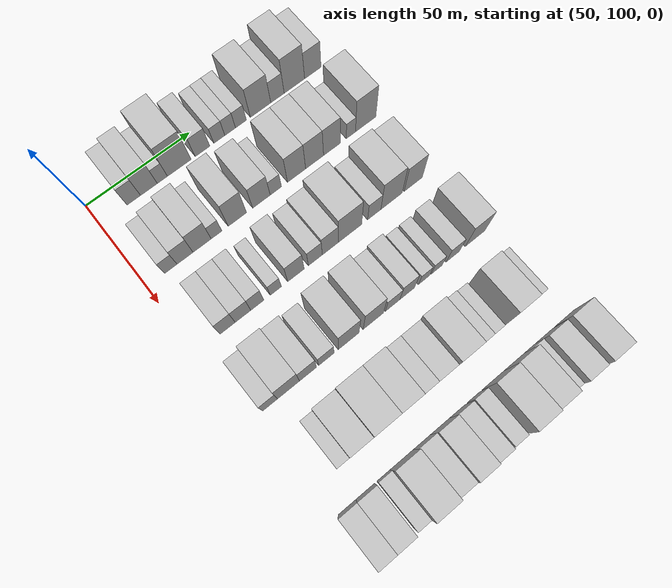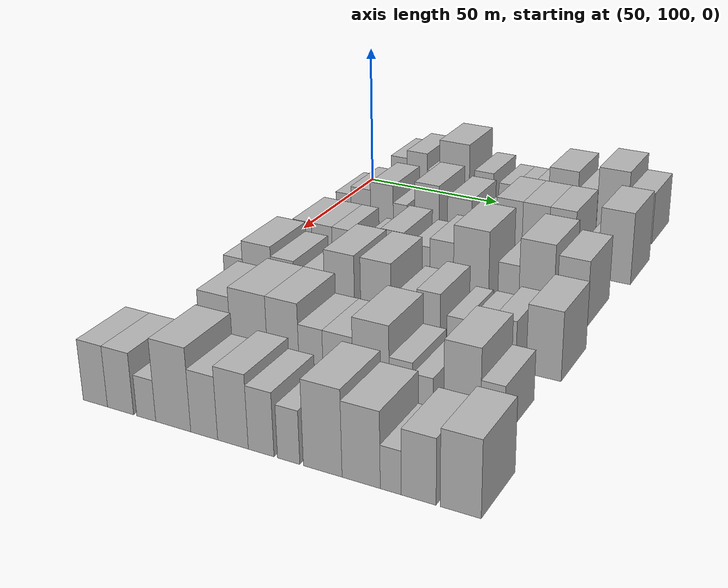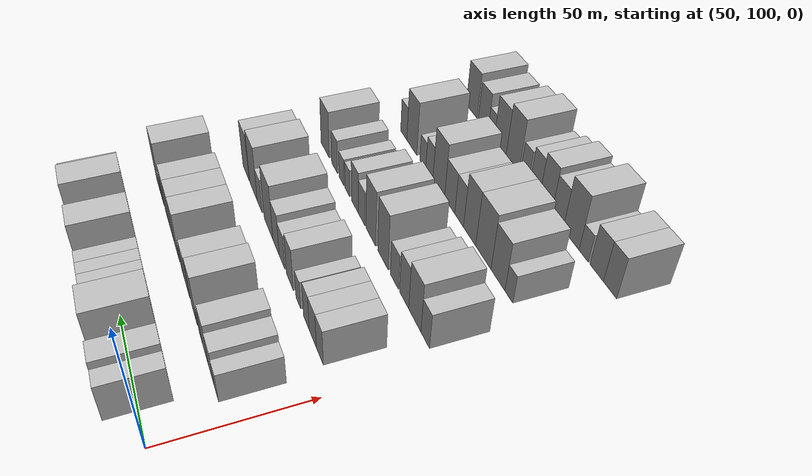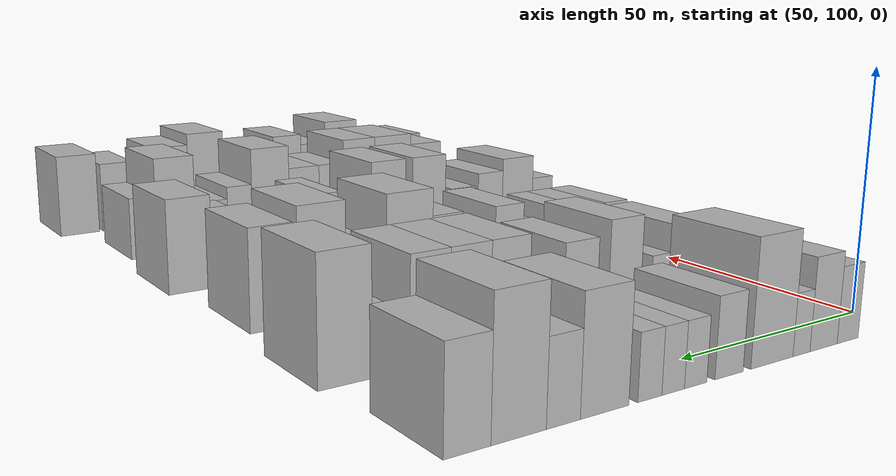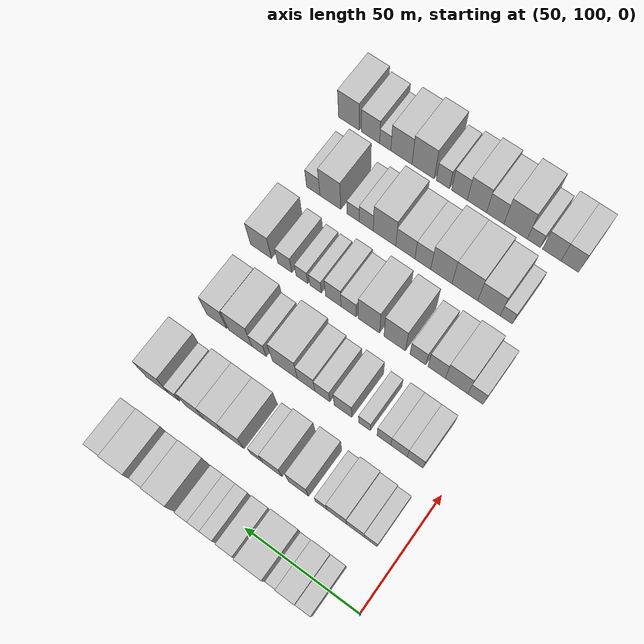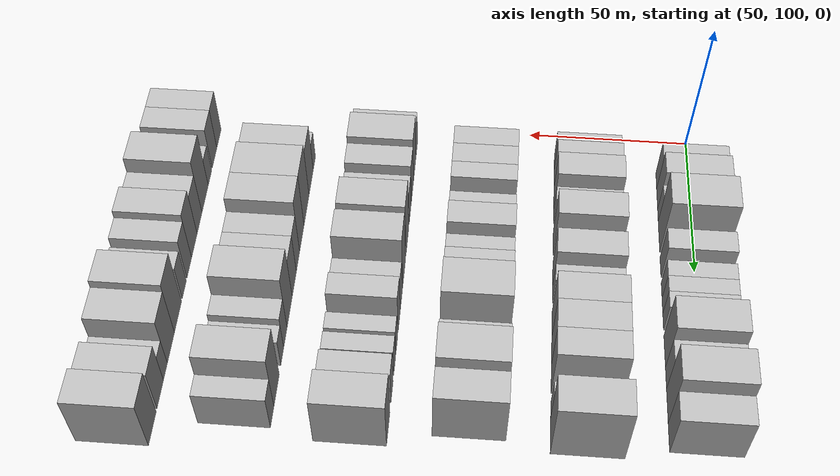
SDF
<sdf version="1.6">
 <world name="default">
  <model name="building_73">
   <static>1</static>
   <pose>50.0000 116.0705 0 0.000000 0.000000 0.000000</pose>
   <link name="link">
    <pose>0 0 7.50 0 0 0</pose>
    <collision name="collision"><geometry><box><size>20.0000 6.3748 15.0000</size></box></geometry></collision>
    <visual name="visual">
     <cast_shadows>0</cast_shadows>
     <geometry><box><size>20.0000 6.3748 15.0000</size></box></geometry>
     <material>
      <script>
       <uri>model://HANNAS_wall/materials/scripts</uri>
       <uri>model://HANNAS_wall/materials/textures</uri>
       <name>vrc/HANNAS_wall</name>
      </script>
     </material>
    </visual>
   </link>
  </model>
  <model name="building_74">
   <static>1</static>
   <pose>50.0000 123.2562 0 0.000000 0.000000 0.000000</pose>
   <link name="link">
    <pose>0 0 9.00 0 0 0</pose>
    <collision name="collision"><geometry><box><size>20.0000 7.9965 18.0000</size></box></geometry></collision>
    <visual name="visual">
     <cast_shadows>0</cast_shadows>
     <geometry><box><size>20.0000 7.9965 18.0000</size></box></geometry>
     <material>
      <script>
       <uri>model://HANNAS_wall/materials/scripts</uri>
       <uri>model://HANNAS_wall/materials/textures</uri>
       <name>vrc/HANNAS_wall</name>
      </script>
     </material>
    </visual>
   </link>
  </model>
  <model name="building_75">
   <static>1</static>
   <pose>50.0000 129.6763 0 0.000000 0.000000 0.000000</pose>
   <link name="link">
    <pose>0 0 6.00 0 0 0</pose>
    <collision name="collision"><geometry><box><size>20.0000 4.8437 12.0000</size></box></geometry></collision>
    <visual name="visual">
     <cast_shadows>0</cast_shadows>
     <geometry><box><size>20.0000 4.8437 12.0000</size></box></geometry>
     <material>
      <script>
       <uri>model://HANNAS_wall/materials/scripts</uri>
       <uri>model://HANNAS_wall/materials/textures</uri>
       <name>vrc/HANNAS_wall</name>
      </script>
     </material>
    </visual>
   </link>
  </model>
  <model name="building_76">
   <static>1</static>
   <pose>50.0000 137.8313 0 0.000000 0.000000 0.000000</pose>
   <link name="link">
    <pose>0 0 12.00 0 0 0</pose>
    <collision name="collision"><geometry><box><size>20.0000 11.4663 24.0000</size></box></geometry></collision>
    <visual name="visual">
     <cast_shadows>0</cast_shadows>
     <geometry><box><size>20.0000 11.4663 24.0000</size></box></geometry>
     <material>
      <script>
       <uri>model://HANNAS_wall/materials/scripts</uri>
       <uri>model://HANNAS_wall/materials/textures</uri>
       <name>vrc/HANNAS_wall</name>
      </script>
     </material>
    </visual>
   </link>
  </model>
  <model name="building_77">
   <static>1</static>
   <pose>50.0000 149.1708 0 0.000000 0.000000 0.000000</pose>
   <link name="link">
    <pose>0 0 7.50 0 0 0</pose>
    <collision name="collision"><geometry><box><size>20.0000 7.2126 15.0000</size></box></geometry></collision>
    <visual name="visual">
     <cast_shadows>0</cast_shadows>
     <geometry><box><size>20.0000 7.2126 15.0000</size></box></geometry>
     <material>
      <script>
       <uri>model://HANNAS_wall/materials/scripts</uri>
       <uri>model://HANNAS_wall/materials/textures</uri>
       <name>vrc/HANNAS_wall</name>
      </script>
     </material>
    </visual>
   </link>
  </model>
  <model name="building_78">
   <static>1</static>
   <pose>50.0000 157.5082 0 0.000000 0.000000 0.000000</pose>
   <link name="link">
    <pose>0 0 6.00 0 0 0</pose>
    <collision name="collision"><geometry><box><size>20.0000 5.4622 12.0000</size></box></geometry></collision>
    <visual name="visual">
     <cast_shadows>0</cast_shadows>
     <geometry><box><size>20.0000 5.4622 12.0000</size></box></geometry>
     <material>
      <script>
       <uri>model://HANNAS_wall/materials/scripts</uri>
       <uri>model://HANNAS_wall/materials/textures</uri>
       <name>vrc/HANNAS_wall</name>
      </script>
     </material>
    </visual>
   </link>
  </model>
  <model name="building_79">
   <static>1</static>
   <pose>50.0000 162.9114 0 0.000000 0.000000 0.000000</pose>
   <link name="link">
    <pose>0 0 6.00 0 0 0</pose>
    <collision name="collision"><geometry><box><size>20.0000 5.3441 12.0000</size></box></geometry></collision>
    <visual name="visual">
     <cast_shadows>0</cast_shadows>
     <geometry><box><size>20.0000 5.3441 12.0000</size></box></geometry>
     <material>
      <script>
       <uri>model://HANNAS_wall/materials/scripts</uri>
       <uri>model://HANNAS_wall/materials/textures</uri>
       <name>vrc/HANNAS_wall</name>
      </script>
     </material>
    </visual>
   </link>
  </model>
  <model name="building_80">
   <static>1</static>
   <pose>50.0000 168.3394 0 0.000000 0.000000 0.000000</pose>
   <link name="link">
    <pose>0 0 6.00 0 0 0</pose>
    <collision name="collision"><geometry><box><size>20.0000 5.5121 12.0000</size></box></geometry></collision>
    <visual name="visual">
     <cast_shadows>0</cast_shadows>
     <geometry><box><size>20.0000 5.5121 12.0000</size></box></geometry>
     <material>
      <script>
       <uri>model://HANNAS_wall/materials/scripts</uri>
       <uri>model://HANNAS_wall/materials/textures</uri>
       <name>vrc/HANNAS_wall</name>
      </script>
     </material>
    </visual>
   </link>
  </model>
  <model name="building_81">
   <static>1</static>
   <pose>50.0000 178.3132 0 0.000000 0.000000 0.000000</pose>
   <link name="link">
    <pose>0 0 10.50 0 0 0</pose>
    <collision name="collision"><geometry><box><size>20.0000 10.4354 21.0000</size></box></geometry></collision>
    <visual name="visual">
     <cast_shadows>0</cast_shadows>
     <geometry><box><size>20.0000 10.4354 21.0000</size></box></geometry>
     <material>
      <script>
       <uri>model://HANNAS_wall/materials/scripts</uri>
       <uri>model://HANNAS_wall/materials/textures</uri>
       <name>vrc/HANNAS_wall</name>
      </script>
     </material>
    </visual>
   </link>
  </model>
  <model name="building_82">
   <static>1</static>
   <pose>50.0000 186.9970 0 0.000000 0.000000 0.000000</pose>
   <link name="link">
    <pose>0 0 7.50 0 0 0</pose>
    <collision name="collision"><geometry><box><size>20.0000 6.9324 15.0000</size></box></geometry></collision>
    <visual name="visual">
     <cast_shadows>0</cast_shadows>
     <geometry><box><size>20.0000 6.9324 15.0000</size></box></geometry>
     <material>
      <script>
       <uri>model://HANNAS_wall/materials/scripts</uri>
       <uri>model://HANNAS_wall/materials/textures</uri>
       <name>vrc/HANNAS_wall</name>
      </script>
     </material>
    </visual>
   </link>
  </model>
  <model name="building_83">
   <static>1</static>
   <pose>50.0000 195.8103 0 0.000000 0.000000 0.000000</pose>
   <link name="link">
    <pose>0 0 12.00 0 0 0</pose>
    <collision name="collision"><geometry><box><size>20.0000 10.6941 24.0000</size></box></geometry></collision>
    <visual name="visual">
     <cast_shadows>0</cast_shadows>
     <geometry><box><size>20.0000 10.6941 24.0000</size></box></geometry>
     <material>
      <script>
       <uri>model://HANNAS_wall/materials/scripts</uri>
       <uri>model://HANNAS_wall/materials/textures</uri>
       <name>vrc/HANNAS_wall</name>
      </script>
     </material>
    </visual>
   </link>
  </model>
  <model name="building_84">
   <static>1</static>
   <pose>50.0000 205.4900 0 0.000000 0.000000 0.000000</pose>
   <link name="link">
    <pose>0 0 9.00 0 0 0</pose>
    <collision name="collision"><geometry><box><size>20.0000 8.6653 18.0000</size></box></geometry></collision>
    <visual name="visual">
     <cast_shadows>0</cast_shadows>
     <geometry><box><size>20.0000 8.6653 18.0000</size></box></geometry>
     <material>
      <script>
       <uri>model://HANNAS_wall/materials/scripts</uri>
       <uri>model://HANNAS_wall/materials/textures</uri>
       <name>vrc/HANNAS_wall</name>
      </script>
     </material>
    </visual>
   </link>
  </model>
  <model name="building_189">
   <static>1</static>
   <pose>82.0000 111.1858 0 0.000000 0.000000 0.000000</pose>
   <link name="link">
    <pose>0 0 6.00 0 0 0</pose>
    <collision name="collision"><geometry><box><size>20.0000 5.7949 12.0000</size></box></geometry></collision>
    <visual name="visual">
     <cast_shadows>0</cast_shadows>
     <geometry><box><size>20.0000 5.7949 12.0000</size></box></geometry>
     <material>
      <script>
       <uri>model://HANNAS_wall/materials/scripts</uri>
       <uri>model://HANNAS_wall/materials/textures</uri>
       <name>vrc/HANNAS_wall</name>
      </script>
     </material>
    </visual>
   </link>
  </model>
  <model name="building_190">
   <static>1</static>
   <pose>82.0000 117.8266 0 0.000000 0.000000 0.000000</pose>
   <link name="link">
    <pose>0 0 7.50 0 0 0</pose>
    <collision name="collision"><geometry><box><size>20.0000 7.4867 15.0000</size></box></geometry></collision>
    <visual name="visual">
     <cast_shadows>0</cast_shadows>
     <geometry><box><size>20.0000 7.4867 15.0000</size></box></geometry>
     <material>
      <script>
       <uri>model://HANNAS_wall/materials/scripts</uri>
       <uri>model://HANNAS_wall/materials/textures</uri>
       <name>vrc/HANNAS_wall</name>
      </script>
     </material>
    </visual>
   </link>
  </model>
  <model name="building_191">
   <static>1</static>
   <pose>82.0000 125.8570 0 0.000000 0.000000 0.000000</pose>
   <link name="link">
    <pose>0 0 9.00 0 0 0</pose>
    <collision name="collision"><geometry><box><size>20.0000 8.5742 18.0000</size></box></geometry></collision>
    <visual name="visual">
     <cast_shadows>0</cast_shadows>
     <geometry><box><size>20.0000 8.5742 18.0000</size></box></geometry>
     <material>
      <script>
       <uri>model://HANNAS_wall/materials/scripts</uri>
       <uri>model://HANNAS_wall/materials/textures</uri>
       <name>vrc/HANNAS_wall</name>
      </script>
     </material>
    </visual>
   </link>
  </model>
  <model name="building_192">
   <static>1</static>
   <pose>82.0000 132.6845 0 0.000000 0.000000 0.000000</pose>
   <link name="link">
    <pose>0 0 6.00 0 0 0</pose>
    <collision name="collision"><geometry><box><size>20.0000 5.0806 12.0000</size></box></geometry></collision>
    <visual name="visual">
     <cast_shadows>0</cast_shadows>
     <geometry><box><size>20.0000 5.0806 12.0000</size></box></geometry>
     <material>
      <script>
       <uri>model://HANNAS_wall/materials/scripts</uri>
       <uri>model://HANNAS_wall/materials/textures</uri>
       <name>vrc/HANNAS_wall</name>
      </script>
     </material>
    </visual>
   </link>
  </model>
  <model name="building_193">
   <static>1</static>
   <pose>82.0000 142.6565 0 0.000000 0.000000 0.000000</pose>
   <link name="link">
    <pose>0 0 10.50 0 0 0</pose>
    <collision name="collision"><geometry><box><size>20.0000 8.8636 21.0000</size></box></geometry></collision>
    <visual name="visual">
     <cast_shadows>0</cast_shadows>
     <geometry><box><size>20.0000 8.8636 21.0000</size></box></geometry>
     <material>
      <script>
       <uri>model://HANNAS_wall/materials/scripts</uri>
       <uri>model://HANNAS_wall/materials/textures</uri>
       <name>vrc/HANNAS_wall</name>
      </script>
     </material>
    </visual>
   </link>
  </model>
  <model name="building_194">
   <static>1</static>
   <pose>82.0000 154.3852 0 0.000000 0.000000 0.000000</pose>
   <link name="link">
    <pose>0 0 9.00 0 0 0</pose>
    <collision name="collision"><geometry><box><size>20.0000 8.5938 18.0000</size></box></geometry></collision>
    <visual name="visual">
     <cast_shadows>0</cast_shadows>
     <geometry><box><size>20.0000 8.5938 18.0000</size></box></geometry>
     <material>
      <script>
       <uri>model://HANNAS_wall/materials/scripts</uri>
       <uri>model://HANNAS_wall/materials/textures</uri>
       <name>vrc/HANNAS_wall</name>
      </script>
     </material>
    </visual>
   </link>
  </model>
  <model name="building_195">
   <static>1</static>
   <pose>82.0000 161.4763 0 0.000000 0.000000 0.000000</pose>
   <link name="link">
    <pose>0 0 6.00 0 0 0</pose>
    <collision name="collision"><geometry><box><size>20.0000 5.5882 12.0000</size></box></geometry></collision>
    <visual name="visual">
     <cast_shadows>0</cast_shadows>
     <geometry><box><size>20.0000 5.5882 12.0000</size></box></geometry>
     <material>
      <script>
       <uri>model://HANNAS_wall/materials/scripts</uri>
       <uri>model://HANNAS_wall/materials/textures</uri>
       <name>vrc/HANNAS_wall</name>
      </script>
     </material>
    </visual>
   </link>
  </model>
  <model name="building_196">
   <static>1</static>
   <pose>82.0000 171.8208 0 0.000000 0.000000 0.000000</pose>
   <link name="link">
    <pose>0 0 10.50 0 0 0</pose>
    <collision name="collision"><geometry><box><size>20.0000 9.1008 21.0000</size></box></geometry></collision>
    <visual name="visual">
     <cast_shadows>0</cast_shadows>
     <geometry><box><size>20.0000 9.1008 21.0000</size></box></geometry>
     <material>
      <script>
       <uri>model://HANNAS_wall/materials/scripts</uri>
       <uri>model://HANNAS_wall/materials/textures</uri>
       <name>vrc/HANNAS_wall</name>
      </script>
     </material>
    </visual>
   </link>
  </model>
  <model name="building_197">
   <static>1</static>
   <pose>82.0000 180.9183 0 0.000000 0.000000 0.000000</pose>
   <link name="link">
    <pose>0 0 10.50 0 0 0</pose>
    <collision name="collision"><geometry><box><size>20.0000 9.0941 21.0000</size></box></geometry></collision>
    <visual name="visual">
     <cast_shadows>0</cast_shadows>
     <geometry><box><size>20.0000 9.0941 21.0000</size></box></geometry>
     <material>
      <script>
       <uri>model://HANNAS_wall/materials/scripts</uri>
       <uri>model://HANNAS_wall/materials/textures</uri>
       <name>vrc/HANNAS_wall</name>
      </script>
     </material>
    </visual>
   </link>
  </model>
  <model name="building_198">
   <static>1</static>
   <pose>82.0000 189.8263 0 0.000000 0.000000 0.000000</pose>
   <link name="link">
    <pose>0 0 10.50 0 0 0</pose>
    <collision name="collision"><geometry><box><size>20.0000 8.7218 21.0000</size></box></geometry></collision>
    <visual name="visual">
     <cast_shadows>0</cast_shadows>
     <geometry><box><size>20.0000 8.7218 21.0000</size></box></geometry>
     <material>
      <script>
       <uri>model://HANNAS_wall/materials/scripts</uri>
       <uri>model://HANNAS_wall/materials/textures</uri>
       <name>vrc/HANNAS_wall</name>
      </script>
     </material>
    </visual>
   </link>
  </model>
  <model name="building_199">
   <static>1</static>
   <pose>82.0000 199.5909 0 0.000000 0.000000 0.000000</pose>
   <link name="link">
    <pose>0 0 6.00 0 0 0</pose>
    <collision name="collision"><geometry><box><size>20.0000 4.8074 12.0000</size></box></geometry></collision>
    <visual name="visual">
     <cast_shadows>0</cast_shadows>
     <geometry><box><size>20.0000 4.8074 12.0000</size></box></geometry>
     <material>
      <script>
       <uri>model://HANNAS_wall/materials/scripts</uri>
       <uri>model://HANNAS_wall/materials/textures</uri>
       <name>vrc/HANNAS_wall</name>
      </script>
     </material>
    </visual>
   </link>
  </model>
  <model name="building_200">
   <static>1</static>
   <pose>82.0000 207.3265 0 0.000000 0.000000 0.000000</pose>
   <link name="link">
    <pose>0 0 12.00 0 0 0</pose>
    <collision name="collision"><geometry><box><size>20.0000 10.6637 24.0000</size></box></geometry></collision>
    <visual name="visual">
     <cast_shadows>0</cast_shadows>
     <geometry><box><size>20.0000 10.6637 24.0000</size></box></geometry>
     <material>
      <script>
       <uri>model://HANNAS_wall/materials/scripts</uri>
       <uri>model://HANNAS_wall/materials/textures</uri>
       <name>vrc/HANNAS_wall</name>
      </script>
     </material>
    </visual>
   </link>
  </model>
  <model name="building_306">
   <static>1</static>
   <pose>114.0000 114.3376 0 0.000000 0.000000 0.000000</pose>
   <link name="link">
    <pose>0 0 7.50 0 0 0</pose>
    <collision name="collision"><geometry><box><size>20.0000 6.9234 15.0000</size></box></geometry></collision>
    <visual name="visual">
     <cast_shadows>0</cast_shadows>
     <geometry><box><size>20.0000 6.9234 15.0000</size></box></geometry>
     <material>
      <script>
       <uri>model://HANNAS_wall/materials/scripts</uri>
       <uri>model://HANNAS_wall/materials/textures</uri>
       <name>vrc/HANNAS_wall</name>
      </script>
     </material>
    </visual>
   </link>
  </model>
  <model name="building_307">
   <static>1</static>
   <pose>114.0000 121.4168 0 0.000000 0.000000 0.000000</pose>
   <link name="link">
    <pose>0 0 7.50 0 0 0</pose>
    <collision name="collision"><geometry><box><size>20.0000 7.2350 15.0000</size></box></geometry></collision>
    <visual name="visual">
     <cast_shadows>0</cast_shadows>
     <geometry><box><size>20.0000 7.2350 15.0000</size></box></geometry>
     <material>
      <script>
       <uri>model://HANNAS_wall/materials/scripts</uri>
       <uri>model://HANNAS_wall/materials/textures</uri>
       <name>vrc/HANNAS_wall</name>
      </script>
     </material>
    </visual>
   </link>
  </model>
  <model name="building_308">
   <static>1</static>
   <pose>114.0000 128.0933 0 0.000000 0.000000 0.000000</pose>
   <link name="link">
    <pose>0 0 7.50 0 0 0</pose>
    <collision name="collision"><geometry><box><size>20.0000 6.1179 15.0000</size></box></geometry></collision>
    <visual name="visual">
     <cast_shadows>0</cast_shadows>
     <geometry><box><size>20.0000 6.1179 15.0000</size></box></geometry>
     <material>
      <script>
       <uri>model://HANNAS_wall/materials/scripts</uri>
       <uri>model://HANNAS_wall/materials/textures</uri>
       <name>vrc/HANNAS_wall</name>
      </script>
     </material>
    </visual>
   </link>
  </model>
  <model name="building_309">
   <static>1</static>
   <pose>114.0000 136.7997 0 0.000000 0.000000 0.000000</pose>
   <link name="link">
    <pose>0 0 6.00 0 0 0</pose>
    <collision name="collision"><geometry><box><size>20.0000 5.2948 12.0000</size></box></geometry></collision>
    <visual name="visual">
     <cast_shadows>0</cast_shadows>
     <geometry><box><size>20.0000 5.2948 12.0000</size></box></geometry>
     <material>
      <script>
       <uri>model://HANNAS_wall/materials/scripts</uri>
       <uri>model://HANNAS_wall/materials/textures</uri>
       <name>vrc/HANNAS_wall</name>
      </script>
     </material>
    </visual>
   </link>
  </model>
  <model name="building_310">
   <static>1</static>
   <pose>114.0000 146.4066 0 0.000000 0.000000 0.000000</pose>
   <link name="link">
    <pose>0 0 9.00 0 0 0</pose>
    <collision name="collision"><geometry><box><size>20.0000 7.9189 18.0000</size></box></geometry></collision>
    <visual name="visual">
     <cast_shadows>0</cast_shadows>
     <geometry><box><size>20.0000 7.9189 18.0000</size></box></geometry>
     <material>
      <script>
       <uri>model://HANNAS_wall/materials/scripts</uri>
       <uri>model://HANNAS_wall/materials/textures</uri>
       <name>vrc/HANNAS_wall</name>
      </script>
     </material>
    </visual>
   </link>
  </model>
  <model name="building_311">
   <static>1</static>
   <pose>114.0000 155.7521 0 0.000000 0.000000 0.000000</pose>
   <link name="link">
    <pose>0 0 7.50 0 0 0</pose>
    <collision name="collision"><geometry><box><size>20.0000 6.7722 15.0000</size></box></geometry></collision>
    <visual name="visual">
     <cast_shadows>0</cast_shadows>
     <geometry><box><size>20.0000 6.7722 15.0000</size></box></geometry>
     <material>
      <script>
       <uri>model://HANNAS_wall/materials/scripts</uri>
       <uri>model://HANNAS_wall/materials/textures</uri>
       <name>vrc/HANNAS_wall</name>
      </script>
     </material>
    </visual>
   </link>
  </model>
  <model name="building_312">
   <static>1</static>
   <pose>114.0000 163.0982 0 0.000000 0.000000 0.000000</pose>
   <link name="link">
    <pose>0 0 9.00 0 0 0</pose>
    <collision name="collision"><geometry><box><size>20.0000 7.9199 18.0000</size></box></geometry></collision>
    <visual name="visual">
     <cast_shadows>0</cast_shadows>
     <geometry><box><size>20.0000 7.9199 18.0000</size></box></geometry>
     <material>
      <script>
       <uri>model://HANNAS_wall/materials/scripts</uri>
       <uri>model://HANNAS_wall/materials/textures</uri>
       <name>vrc/HANNAS_wall</name>
      </script>
     </material>
    </visual>
   </link>
  </model>
  <model name="building_313">
   <static>1</static>
   <pose>114.0000 172.8481 0 0.000000 0.000000 0.000000</pose>
   <link name="link">
    <pose>0 0 12.00 0 0 0</pose>
    <collision name="collision"><geometry><box><size>20.0000 11.5801 24.0000</size></box></geometry></collision>
    <visual name="visual">
     <cast_shadows>0</cast_shadows>
     <geometry><box><size>20.0000 11.5801 24.0000</size></box></geometry>
     <material>
      <script>
       <uri>model://HANNAS_wall/materials/scripts</uri>
       <uri>model://HANNAS_wall/materials/textures</uri>
       <name>vrc/HANNAS_wall</name>
      </script>
     </material>
    </visual>
   </link>
  </model>
  <model name="building_314">
   <static>1</static>
   <pose>114.0000 184.9871 0 0.000000 0.000000 0.000000</pose>
   <link name="link">
    <pose>0 0 7.50 0 0 0</pose>
    <collision name="collision"><geometry><box><size>20.0000 6.6978 15.0000</size></box></geometry></collision>
    <visual name="visual">
     <cast_shadows>0</cast_shadows>
     <geometry><box><size>20.0000 6.6978 15.0000</size></box></geometry>
     <material>
      <script>
       <uri>model://HANNAS_wall/materials/scripts</uri>
       <uri>model://HANNAS_wall/materials/textures</uri>
       <name>vrc/HANNAS_wall</name>
      </script>
     </material>
    </visual>
   </link>
  </model>
  <model name="building_315">
   <static>1</static>
   <pose>114.0000 193.8155 0 0.000000 0.000000 0.000000</pose>
   <link name="link">
    <pose>0 0 12.00 0 0 0</pose>
    <collision name="collision"><geometry><box><size>20.0000 10.9590 24.0000</size></box></geometry></collision>
    <visual name="visual">
     <cast_shadows>0</cast_shadows>
     <geometry><box><size>20.0000 10.9590 24.0000</size></box></geometry>
     <material>
      <script>
       <uri>model://HANNAS_wall/materials/scripts</uri>
       <uri>model://HANNAS_wall/materials/textures</uri>
       <name>vrc/HANNAS_wall</name>
      </script>
     </material>
    </visual>
   </link>
  </model>
  <model name="building_316">
   <static>1</static>
   <pose>114.0000 205.0139 0 0.000000 0.000000 0.000000</pose>
   <link name="link">
    <pose>0 0 10.50 0 0 0</pose>
    <collision name="collision"><geometry><box><size>20.0000 9.4379 21.0000</size></box></geometry></collision>
    <visual name="visual">
     <cast_shadows>0</cast_shadows>
     <geometry><box><size>20.0000 9.4379 21.0000</size></box></geometry>
     <material>
      <script>
       <uri>model://HANNAS_wall/materials/scripts</uri>
       <uri>model://HANNAS_wall/materials/textures</uri>
       <name>vrc/HANNAS_wall</name>
      </script>
     </material>
    </visual>
   </link>
  </model>
  <model name="building_429">
   <static>1</static>
   <pose>146.0000 109.6202 0 0.000000 0.000000 0.000000</pose>
   <link name="link">
    <pose>0 0 7.50 0 0 0</pose>
    <collision name="collision"><geometry><box><size>20.0000 6.7454 15.0000</size></box></geometry></collision>
    <visual name="visual">
     <cast_shadows>0</cast_shadows>
     <geometry><box><size>20.0000 6.7454 15.0000</size></box></geometry>
     <material>
      <script>
       <uri>model://HANNAS_wall/materials/scripts</uri>
       <uri>model://HANNAS_wall/materials/textures</uri>
       <name>vrc/HANNAS_wall</name>
      </script>
     </material>
    </visual>
   </link>
  </model>
  <model name="building_430">
   <static>1</static>
   <pose>146.0000 117.9711 0 0.000000 0.000000 0.000000</pose>
   <link name="link">
    <pose>0 0 10.50 0 0 0</pose>
    <collision name="collision"><geometry><box><size>20.0000 9.9562 21.0000</size></box></geometry></collision>
    <visual name="visual">
     <cast_shadows>0</cast_shadows>
     <geometry><box><size>20.0000 9.9562 21.0000</size></box></geometry>
     <material>
      <script>
       <uri>model://HANNAS_wall/materials/scripts</uri>
       <uri>model://HANNAS_wall/materials/textures</uri>
       <name>vrc/HANNAS_wall</name>
      </script>
     </material>
    </visual>
   </link>
  </model>
  <model name="building_431">
   <static>1</static>
   <pose>146.0000 126.8595 0 0.000000 0.000000 0.000000</pose>
   <link name="link">
    <pose>0 0 9.00 0 0 0</pose>
    <collision name="collision"><geometry><box><size>20.0000 7.8206 18.0000</size></box></geometry></collision>
    <visual name="visual">
     <cast_shadows>0</cast_shadows>
     <geometry><box><size>20.0000 7.8206 18.0000</size></box></geometry>
     <material>
      <script>
       <uri>model://HANNAS_wall/materials/scripts</uri>
       <uri>model://HANNAS_wall/materials/textures</uri>
       <name>vrc/HANNAS_wall</name>
      </script>
     </material>
    </visual>
   </link>
  </model>
  <model name="building_432">
   <static>1</static>
   <pose>146.0000 135.3620 0 0.000000 0.000000 0.000000</pose>
   <link name="link">
    <pose>0 0 7.50 0 0 0</pose>
    <collision name="collision"><geometry><box><size>20.0000 7.1844 15.0000</size></box></geometry></collision>
    <visual name="visual">
     <cast_shadows>0</cast_shadows>
     <geometry><box><size>20.0000 7.1844 15.0000</size></box></geometry>
     <material>
      <script>
       <uri>model://HANNAS_wall/materials/scripts</uri>
       <uri>model://HANNAS_wall/materials/textures</uri>
       <name>vrc/HANNAS_wall</name>
      </script>
     </material>
    </visual>
   </link>
  </model>
  <model name="building_433">
   <static>1</static>
   <pose>146.0000 145.8602 0 0.000000 0.000000 0.000000</pose>
   <link name="link">
    <pose>0 0 12.00 0 0 0</pose>
    <collision name="collision"><geometry><box><size>20.0000 9.8120 24.0000</size></box></geometry></collision>
    <visual name="visual">
     <cast_shadows>0</cast_shadows>
     <geometry><box><size>20.0000 9.8120 24.0000</size></box></geometry>
     <material>
      <script>
       <uri>model://HANNAS_wall/materials/scripts</uri>
       <uri>model://HANNAS_wall/materials/textures</uri>
       <name>vrc/HANNAS_wall</name>
      </script>
     </material>
    </visual>
   </link>
  </model>
  <model name="building_434">
   <static>1</static>
   <pose>146.0000 157.6385 0 0.000000 0.000000 0.000000</pose>
   <link name="link">
    <pose>0 0 12.00 0 0 0</pose>
    <collision name="collision"><geometry><box><size>20.0000 9.7445 24.0000</size></box></geometry></collision>
    <visual name="visual">
     <cast_shadows>0</cast_shadows>
     <geometry><box><size>20.0000 9.7445 24.0000</size></box></geometry>
     <material>
      <script>
       <uri>model://HANNAS_wall/materials/scripts</uri>
       <uri>model://HANNAS_wall/materials/textures</uri>
       <name>vrc/HANNAS_wall</name>
      </script>
     </material>
    </visual>
   </link>
  </model>
  <model name="building_435">
   <static>1</static>
   <pose>146.0000 167.0324 0 0.000000 0.000000 0.000000</pose>
   <link name="link">
    <pose>0 0 7.50 0 0 0</pose>
    <collision name="collision"><geometry><box><size>20.0000 7.0432 15.0000</size></box></geometry></collision>
    <visual name="visual">
     <cast_shadows>0</cast_shadows>
     <geometry><box><size>20.0000 7.0432 15.0000</size></box></geometry>
     <material>
      <script>
       <uri>model://HANNAS_wall/materials/scripts</uri>
       <uri>model://HANNAS_wall/materials/textures</uri>
       <name>vrc/HANNAS_wall</name>
      </script>
     </material>
    </visual>
   </link>
  </model>
  <model name="building_436">
   <static>1</static>
   <pose>146.0000 174.1772 0 0.000000 0.000000 0.000000</pose>
   <link name="link">
    <pose>0 0 9.00 0 0 0</pose>
    <collision name="collision"><geometry><box><size>20.0000 7.2464 18.0000</size></box></geometry></collision>
    <visual name="visual">
     <cast_shadows>0</cast_shadows>
     <geometry><box><size>20.0000 7.2464 18.0000</size></box></geometry>
     <material>
      <script>
       <uri>model://HANNAS_wall/materials/scripts</uri>
       <uri>model://HANNAS_wall/materials/textures</uri>
       <name>vrc/HANNAS_wall</name>
      </script>
     </material>
    </visual>
   </link>
  </model>
  <model name="building_437">
   <static>1</static>
   <pose>146.0000 182.5014 0 0.000000 0.000000 0.000000</pose>
   <link name="link">
    <pose>0 0 6.00 0 0 0</pose>
    <collision name="collision"><geometry><box><size>20.0000 5.4020 12.0000</size></box></geometry></collision>
    <visual name="visual">
     <cast_shadows>0</cast_shadows>
     <geometry><box><size>20.0000 5.4020 12.0000</size></box></geometry>
     <material>
      <script>
       <uri>model://HANNAS_wall/materials/scripts</uri>
       <uri>model://HANNAS_wall/materials/textures</uri>
       <name>vrc/HANNAS_wall</name>
      </script>
     </material>
    </visual>
   </link>
  </model>
  <model name="building_438">
   <static>1</static>
   <pose>146.0000 188.9877 0 0.000000 0.000000 0.000000</pose>
   <link name="link">
    <pose>0 0 6.00 0 0 0</pose>
    <collision name="collision"><geometry><box><size>20.0000 5.5704 12.0000</size></box></geometry></collision>
    <visual name="visual">
     <cast_shadows>0</cast_shadows>
     <geometry><box><size>20.0000 5.5704 12.0000</size></box></geometry>
     <material>
      <script>
       <uri>model://HANNAS_wall/materials/scripts</uri>
       <uri>model://HANNAS_wall/materials/textures</uri>
       <name>vrc/HANNAS_wall</name>
      </script>
     </material>
    </visual>
   </link>
  </model>
  <model name="building_439">
   <static>1</static>
   <pose>146.0000 197.1651 0 0.000000 0.000000 0.000000</pose>
   <link name="link">
    <pose>0 0 7.50 0 0 0</pose>
    <collision name="collision"><geometry><box><size>20.0000 6.7845 15.0000</size></box></geometry></collision>
    <visual name="visual">
     <cast_shadows>0</cast_shadows>
     <geometry><box><size>20.0000 6.7845 15.0000</size></box></geometry>
     <material>
      <script>
       <uri>model://HANNAS_wall/materials/scripts</uri>
       <uri>model://HANNAS_wall/materials/textures</uri>
       <name>vrc/HANNAS_wall</name>
      </script>
     </material>
    </visual>
   </link>
  </model>
  <model name="building_440">
   <static>1</static>
   <pose>146.0000 208.6187 0 0.000000 0.000000 0.000000</pose>
   <link name="link">
    <pose>0 0 10.50 0 0 0</pose>
    <collision name="collision"><geometry><box><size>20.0000 10.1228 21.0000</size></box></geometry></collision>
    <visual name="visual">
     <cast_shadows>0</cast_shadows>
     <geometry><box><size>20.0000 10.1228 21.0000</size></box></geometry>
     <material>
      <script>
       <uri>model://HANNAS_wall/materials/scripts</uri>
       <uri>model://HANNAS_wall/materials/textures</uri>
       <name>vrc/HANNAS_wall</name>
      </script>
     </material>
    </visual>
   </link>
  </model>
  <model name="building_541">
   <static>1</static>
   <pose>178.0000 117.0818 0 0.000000 0.000000 0.000000</pose>
   <link name="link">
    <pose>0 0 6.00 0 0 0</pose>
    <collision name="collision"><geometry><box><size>20.0000 5.5165 12.0000</size></box></geometry></collision>
    <visual name="visual">
     <cast_shadows>0</cast_shadows>
     <geometry><box><size>20.0000 5.5165 12.0000</size></box></geometry>
     <material>
      <script>
       <uri>model://HANNAS_wall/materials/scripts</uri>
       <uri>model://HANNAS_wall/materials/textures</uri>
       <name>vrc/HANNAS_wall</name>
      </script>
     </material>
    </visual>
   </link>
  </model>
  <model name="building_542">
   <static>1</static>
   <pose>178.0000 124.9089 0 0.000000 0.000000 0.000000</pose>
   <link name="link">
    <pose>0 0 10.50 0 0 0</pose>
    <collision name="collision"><geometry><box><size>20.0000 10.1377 21.0000</size></box></geometry></collision>
    <visual name="visual">
     <cast_shadows>0</cast_shadows>
     <geometry><box><size>20.0000 10.1377 21.0000</size></box></geometry>
     <material>
      <script>
       <uri>model://HANNAS_wall/materials/scripts</uri>
       <uri>model://HANNAS_wall/materials/textures</uri>
       <name>vrc/HANNAS_wall</name>
      </script>
     </material>
    </visual>
   </link>
  </model>
  <model name="building_543">
   <static>1</static>
   <pose>178.0000 135.8478 0 0.000000 0.000000 0.000000</pose>
   <link name="link">
    <pose>0 0 12.00 0 0 0</pose>
    <collision name="collision"><geometry><box><size>20.0000 11.7401 24.0000</size></box></geometry></collision>
    <visual name="visual">
     <cast_shadows>0</cast_shadows>
     <geometry><box><size>20.0000 11.7401 24.0000</size></box></geometry>
     <material>
      <script>
       <uri>model://HANNAS_wall/materials/scripts</uri>
       <uri>model://HANNAS_wall/materials/textures</uri>
       <name>vrc/HANNAS_wall</name>
      </script>
     </material>
    </visual>
   </link>
  </model>
  <model name="building_544">
   <static>1</static>
   <pose>178.0000 146.6478 0 0.000000 0.000000 0.000000</pose>
   <link name="link">
    <pose>0 0 12.00 0 0 0</pose>
    <collision name="collision"><geometry><box><size>20.0000 9.8599 24.0000</size></box></geometry></collision>
    <visual name="visual">
     <cast_shadows>0</cast_shadows>
     <geometry><box><size>20.0000 9.8599 24.0000</size></box></geometry>
     <material>
      <script>
       <uri>model://HANNAS_wall/materials/scripts</uri>
       <uri>model://HANNAS_wall/materials/textures</uri>
       <name>vrc/HANNAS_wall</name>
      </script>
     </material>
    </visual>
   </link>
  </model>
  <model name="building_545">
   <static>1</static>
   <pose>178.0000 155.2533 0 0.000000 0.000000 0.000000</pose>
   <link name="link">
    <pose>0 0 9.00 0 0 0</pose>
    <collision name="collision"><geometry><box><size>20.0000 7.3513 18.0000</size></box></geometry></collision>
    <visual name="visual">
     <cast_shadows>0</cast_shadows>
     <geometry><box><size>20.0000 7.3513 18.0000</size></box></geometry>
     <material>
      <script>
       <uri>model://HANNAS_wall/materials/scripts</uri>
       <uri>model://HANNAS_wall/materials/textures</uri>
       <name>vrc/HANNAS_wall</name>
      </script>
     </material>
    </visual>
   </link>
  </model>
  <model name="building_546">
   <static>1</static>
   <pose>178.0000 163.3895 0 0.000000 0.000000 0.000000</pose>
   <link name="link">
    <pose>0 0 9.00 0 0 0</pose>
    <collision name="collision"><geometry><box><size>20.0000 8.9211 18.0000</size></box></geometry></collision>
    <visual name="visual">
     <cast_shadows>0</cast_shadows>
     <geometry><box><size>20.0000 8.9211 18.0000</size></box></geometry>
     <material>
      <script>
       <uri>model://HANNAS_wall/materials/scripts</uri>
       <uri>model://HANNAS_wall/materials/textures</uri>
       <name>vrc/HANNAS_wall</name>
      </script>
     </material>
    </visual>
   </link>
  </model>
  <model name="building_547">
   <static>1</static>
   <pose>178.0000 173.1716 0 0.000000 0.000000 0.000000</pose>
   <link name="link">
    <pose>0 0 12.00 0 0 0</pose>
    <collision name="collision"><geometry><box><size>20.0000 10.6431 24.0000</size></box></geometry></collision>
    <visual name="visual">
     <cast_shadows>0</cast_shadows>
     <geometry><box><size>20.0000 10.6431 24.0000</size></box></geometry>
     <material>
      <script>
       <uri>model://HANNAS_wall/materials/scripts</uri>
       <uri>model://HANNAS_wall/materials/textures</uri>
       <name>vrc/HANNAS_wall</name>
      </script>
     </material>
    </visual>
   </link>
  </model>
  <model name="building_548">
   <static>1</static>
   <pose>178.0000 181.8809 0 0.000000 0.000000 0.000000</pose>
   <link name="link">
    <pose>0 0 7.50 0 0 0</pose>
    <collision name="collision"><geometry><box><size>20.0000 6.7757 15.0000</size></box></geometry></collision>
    <visual name="visual">
     <cast_shadows>0</cast_shadows>
     <geometry><box><size>20.0000 6.7757 15.0000</size></box></geometry>
     <material>
      <script>
       <uri>model://HANNAS_wall/materials/scripts</uri>
       <uri>model://HANNAS_wall/materials/textures</uri>
       <name>vrc/HANNAS_wall</name>
      </script>
     </material>
    </visual>
   </link>
  </model>
  <model name="building_549">
   <static>1</static>
   <pose>178.0000 188.1274 0 0.000000 0.000000 0.000000</pose>
   <link name="link">
    <pose>0 0 6.00 0 0 0</pose>
    <collision name="collision"><geometry><box><size>20.0000 5.7172 12.0000</size></box></geometry></collision>
    <visual name="visual">
     <cast_shadows>0</cast_shadows>
     <geometry><box><size>20.0000 5.7172 12.0000</size></box></geometry>
     <material>
      <script>
       <uri>model://HANNAS_wall/materials/scripts</uri>
       <uri>model://HANNAS_wall/materials/textures</uri>
       <name>vrc/HANNAS_wall</name>
      </script>
     </material>
    </visual>
   </link>
  </model>
  <model name="building_550">
   <static>1</static>
   <pose>178.0000 199.0446 0 0.000000 0.000000 0.000000</pose>
   <link name="link">
    <pose>0 0 12.00 0 0 0</pose>
    <collision name="collision"><geometry><box><size>20.0000 10.1172 24.0000</size></box></geometry></collision>
    <visual name="visual">
     <cast_shadows>0</cast_shadows>
     <geometry><box><size>20.0000 10.1172 24.0000</size></box></geometry>
     <material>
      <script>
       <uri>model://HANNAS_wall/materials/scripts</uri>
       <uri>model://HANNAS_wall/materials/textures</uri>
       <name>vrc/HANNAS_wall</name>
      </script>
     </material>
    </visual>
   </link>
  </model>
  <model name="building_551">
   <static>1</static>
   <pose>178.0000 207.3615 0 0.000000 0.000000 0.000000</pose>
   <link name="link">
    <pose>0 0 7.50 0 0 0</pose>
    <collision name="collision"><geometry><box><size>20.0000 6.5167 15.0000</size></box></geometry></collision>
    <visual name="visual">
     <cast_shadows>0</cast_shadows>
     <geometry><box><size>20.0000 6.5167 15.0000</size></box></geometry>
     <material>
      <script>
       <uri>model://HANNAS_wall/materials/scripts</uri>
       <uri>model://HANNAS_wall/materials/textures</uri>
       <name>vrc/HANNAS_wall</name>
      </script>
     </material>
    </visual>
   </link>
  </model>
  <model name="building_662">
   <static>1</static>
   <pose>210.0000 109.0299 0 0.000000 0.000000 0.000000</pose>
   <link name="link">
    <pose>0 0 9.00 0 0 0</pose>
    <collision name="collision"><geometry><box><size>20.0000 7.9142 18.0000</size></box></geometry></collision>
    <visual name="visual">
     <cast_shadows>0</cast_shadows>
     <geometry><box><size>20.0000 7.9142 18.0000</size></box></geometry>
     <material>
      <script>
       <uri>model://HANNAS_wall/materials/scripts</uri>
       <uri>model://HANNAS_wall/materials/textures</uri>
       <name>vrc/HANNAS_wall</name>
      </script>
     </material>
    </visual>
   </link>
  </model>
  <model name="building_663">
   <static>1</static>
   <pose>210.0000 117.1747 0 0.000000 0.000000 0.000000</pose>
   <link name="link">
    <pose>0 0 9.00 0 0 0</pose>
    <collision name="collision"><geometry><box><size>20.0000 8.3754 18.0000</size></box></geometry></collision>
    <visual name="visual">
     <cast_shadows>0</cast_shadows>
     <geometry><box><size>20.0000 8.3754 18.0000</size></box></geometry>
     <material>
      <script>
       <uri>model://HANNAS_wall/materials/scripts</uri>
       <uri>model://HANNAS_wall/materials/textures</uri>
       <name>vrc/HANNAS_wall</name>
      </script>
     </material>
    </visual>
   </link>
  </model>
  <model name="building_664">
   <static>1</static>
   <pose>210.0000 125.3513 0 0.000000 0.000000 0.000000</pose>
   <link name="link">
    <pose>0 0 6.00 0 0 0</pose>
    <collision name="collision"><geometry><box><size>20.0000 5.9779 12.0000</size></box></geometry></collision>
    <visual name="visual">
     <cast_shadows>0</cast_shadows>
     <geometry><box><size>20.0000 5.9779 12.0000</size></box></geometry>
     <material>
      <script>
       <uri>model://HANNAS_wall/materials/scripts</uri>
       <uri>model://HANNAS_wall/materials/textures</uri>
       <name>vrc/HANNAS_wall</name>
      </script>
     </material>
    </visual>
   </link>
  </model>
  <model name="building_665">
   <static>1</static>
   <pose>210.0000 133.7320 0 0.000000 0.000000 0.000000</pose>
   <link name="link">
    <pose>0 0 12.00 0 0 0</pose>
    <collision name="collision"><geometry><box><size>20.0000 10.7835 24.0000</size></box></geometry></collision>
    <visual name="visual">
     <cast_shadows>0</cast_shadows>
     <geometry><box><size>20.0000 10.7835 24.0000</size></box></geometry>
     <material>
      <script>
       <uri>model://HANNAS_wall/materials/scripts</uri>
       <uri>model://HANNAS_wall/materials/textures</uri>
       <name>vrc/HANNAS_wall</name>
      </script>
     </material>
    </visual>
   </link>
  </model>
  <model name="building_666">
   <static>1</static>
   <pose>210.0000 143.1720 0 0.000000 0.000000 0.000000</pose>
   <link name="link">
    <pose>0 0 9.00 0 0 0</pose>
    <collision name="collision"><geometry><box><size>20.0000 8.0964 18.0000</size></box></geometry></collision>
    <visual name="visual">
     <cast_shadows>0</cast_shadows>
     <geometry><box><size>20.0000 8.0964 18.0000</size></box></geometry>
     <material>
      <script>
       <uri>model://HANNAS_wall/materials/scripts</uri>
       <uri>model://HANNAS_wall/materials/textures</uri>
       <name>vrc/HANNAS_wall</name>
      </script>
     </material>
    </visual>
   </link>
  </model>
  <model name="building_667">
   <static>1</static>
   <pose>210.0000 151.7182 0 0.000000 0.000000 0.000000</pose>
   <link name="link">
    <pose>0 0 10.50 0 0 0</pose>
    <collision name="collision"><geometry><box><size>20.0000 8.9960 21.0000</size></box></geometry></collision>
    <visual name="visual">
     <cast_shadows>0</cast_shadows>
     <geometry><box><size>20.0000 8.9960 21.0000</size></box></geometry>
     <material>
      <script>
       <uri>model://HANNAS_wall/materials/scripts</uri>
       <uri>model://HANNAS_wall/materials/textures</uri>
       <name>vrc/HANNAS_wall</name>
      </script>
     </material>
    </visual>
   </link>
  </model>
  <model name="building_668">
   <static>1</static>
   <pose>210.0000 159.9175 0 0.000000 0.000000 0.000000</pose>
   <link name="link">
    <pose>0 0 9.00 0 0 0</pose>
    <collision name="collision"><geometry><box><size>20.0000 7.4025 18.0000</size></box></geometry></collision>
    <visual name="visual">
     <cast_shadows>0</cast_shadows>
     <geometry><box><size>20.0000 7.4025 18.0000</size></box></geometry>
     <material>
      <script>
       <uri>model://HANNAS_wall/materials/scripts</uri>
       <uri>model://HANNAS_wall/materials/textures</uri>
       <name>vrc/HANNAS_wall</name>
      </script>
     </material>
    </visual>
   </link>
  </model>
  <model name="building_669">
   <static>1</static>
   <pose>210.0000 167.7569 0 0.000000 0.000000 0.000000</pose>
   <link name="link">
    <pose>0 0 7.50 0 0 0</pose>
    <collision name="collision"><geometry><box><size>20.0000 6.2763 15.0000</size></box></geometry></collision>
    <visual name="visual">
     <cast_shadows>0</cast_shadows>
     <geometry><box><size>20.0000 6.2763 15.0000</size></box></geometry>
     <material>
      <script>
       <uri>model://HANNAS_wall/materials/scripts</uri>
       <uri>model://HANNAS_wall/materials/textures</uri>
       <name>vrc/HANNAS_wall</name>
      </script>
     </material>
    </visual>
   </link>
  </model>
  <model name="building_670">
   <static>1</static>
   <pose>210.0000 177.2115 0 0.000000 0.000000 0.000000</pose>
   <link name="link">
    <pose>0 0 12.00 0 0 0</pose>
    <collision name="collision"><geometry><box><size>20.0000 10.6329 24.0000</size></box></geometry></collision>
    <visual name="visual">
     <cast_shadows>0</cast_shadows>
     <geometry><box><size>20.0000 10.6329 24.0000</size></box></geometry>
     <material>
      <script>
       <uri>model://HANNAS_wall/materials/scripts</uri>
       <uri>model://HANNAS_wall/materials/textures</uri>
       <name>vrc/HANNAS_wall</name>
      </script>
     </material>
    </visual>
   </link>
  </model>
  <model name="building_671">
   <static>1</static>
   <pose>210.0000 187.6337 0 0.000000 0.000000 0.000000</pose>
   <link name="link">
    <pose>0 0 10.50 0 0 0</pose>
    <collision name="collision"><geometry><box><size>20.0000 10.2114 21.0000</size></box></geometry></collision>
    <visual name="visual">
     <cast_shadows>0</cast_shadows>
     <geometry><box><size>20.0000 10.2114 21.0000</size></box></geometry>
     <material>
      <script>
       <uri>model://HANNAS_wall/materials/scripts</uri>
       <uri>model://HANNAS_wall/materials/textures</uri>
       <name>vrc/HANNAS_wall</name>
      </script>
     </material>
    </visual>
   </link>
  </model>
  <model name="building_672">
   <static>1</static>
   <pose>210.0000 195.4675 0 0.000000 0.000000 0.000000</pose>
   <link name="link">
    <pose>0 0 6.00 0 0 0</pose>
    <collision name="collision"><geometry><box><size>20.0000 5.4561 12.0000</size></box></geometry></collision>
    <visual name="visual">
     <cast_shadows>0</cast_shadows>
     <geometry><box><size>20.0000 5.4561 12.0000</size></box></geometry>
     <material>
      <script>
       <uri>model://HANNAS_wall/materials/scripts</uri>
       <uri>model://HANNAS_wall/materials/textures</uri>
       <name>vrc/HANNAS_wall</name>
      </script>
     </material>
    </visual>
   </link>
  </model>
  <model name="building_673">
   <static>1</static>
   <pose>210.0000 202.6754 0 0.000000 0.000000 0.000000</pose>
   <link name="link">
    <pose>0 0 9.00 0 0 0</pose>
    <collision name="collision"><geometry><box><size>20.0000 8.9598 18.0000</size></box></geometry></collision>
    <visual name="visual">
     <cast_shadows>0</cast_shadows>
     <geometry><box><size>20.0000 8.9598 18.0000</size></box></geometry>
     <material>
      <script>
       <uri>model://HANNAS_wall/materials/scripts</uri>
       <uri>model://HANNAS_wall/materials/textures</uri>
       <name>vrc/HANNAS_wall</name>
      </script>
     </material>
    </visual>
   </link>
  </model>
  <model name="building_674">
   <static>1</static>
   <pose>210.0000 213.2863 0 0.000000 0.000000 0.000000</pose>
   <link name="link">
    <pose>0 0 10.50 0 0 0</pose>
    <collision name="collision"><geometry><box><size>20.0000 10.2621 21.0000</size></box></geometry></collision>
    <visual name="visual">
     <cast_shadows>0</cast_shadows>
     <geometry><box><size>20.0000 10.2621 21.0000</size></box></geometry>
     <material>
      <script>
       <uri>model://HANNAS_wall/materials/scripts</uri>
       <uri>model://HANNAS_wall/materials/textures</uri>
       <name>vrc/HANNAS_wall</name>
      </script>
     </material>
    </visual>
   </link>
  </model>
 </world>
</sdf>
